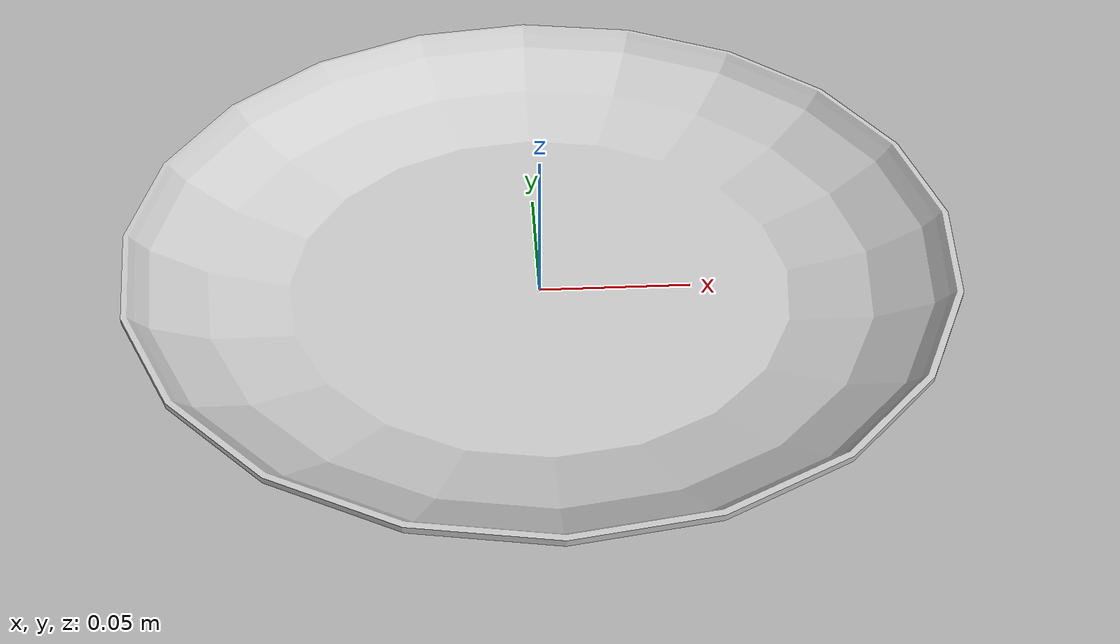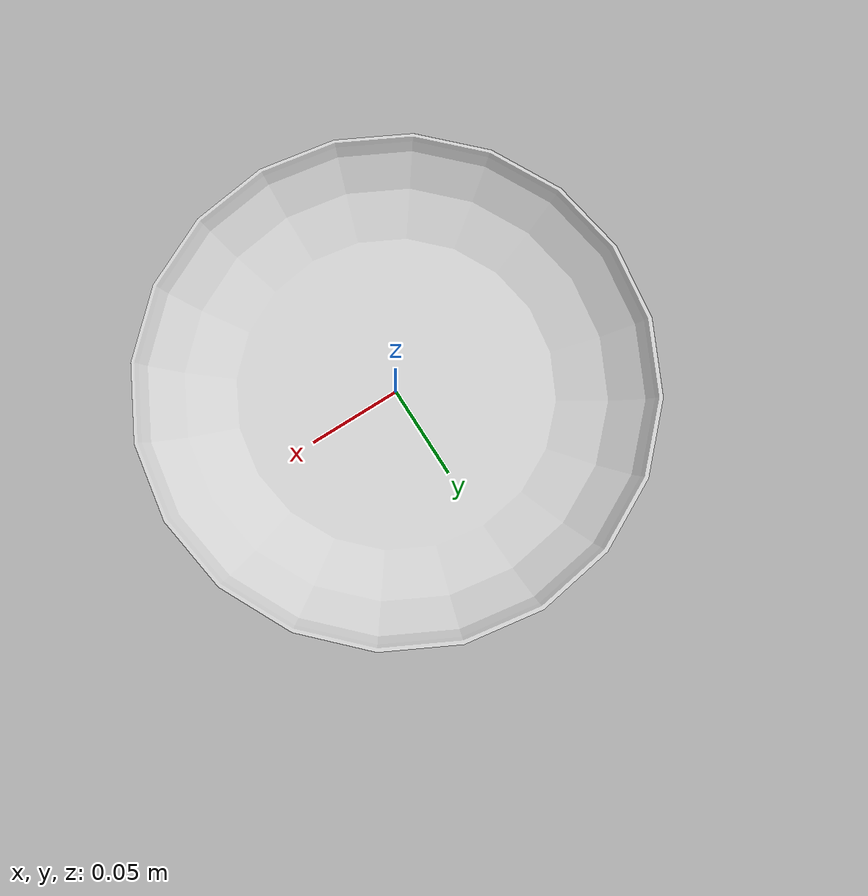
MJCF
<mujoco model="plastic_plate">
  <compiler angle="radian"/>

  <asset>
    <material name="plastic_plate_mat" rgba="0.8 0.8 0.8 1.0" specular="0.5" shininess="0.5"/>
    <mesh name="plastic_plate_mesh" file="plastic_plate_visual.obj"/>
  </asset>

  <worldbody>
    <body name="plastic_plate" pos="0 0 0">
      <freejoint name="plastic_plate_joint"/>

      <!-- Collision mesh (enables stacking) -->
      <geom name="plastic_plate_collision"
            type="mesh"
            mesh="plastic_plate_mesh"
            mass="0.12"
            friction="0.6 0.005 0.0001"
            solref="0.004 1"
            solimp="0.95 0.99 0.001"
            contype="1"
            conaffinity="1"
            rgba="0 0 0 0"/>

      <!-- Visual mesh -->
      <geom name="plastic_plate_visual"
            type="mesh"
            mesh="plastic_plate_mesh"
            material="plastic_plate_mat"
            contype="0"
            conaffinity="0"/>
    </body>
  </worldbody>
</mujoco>
